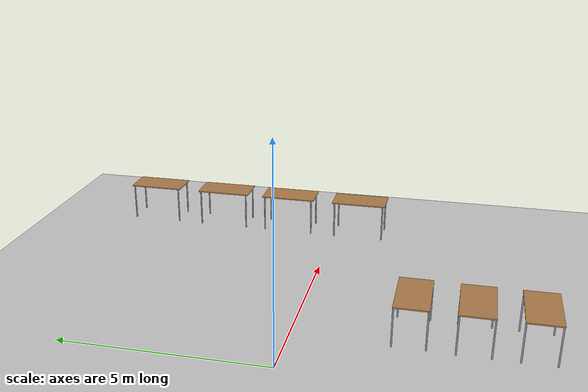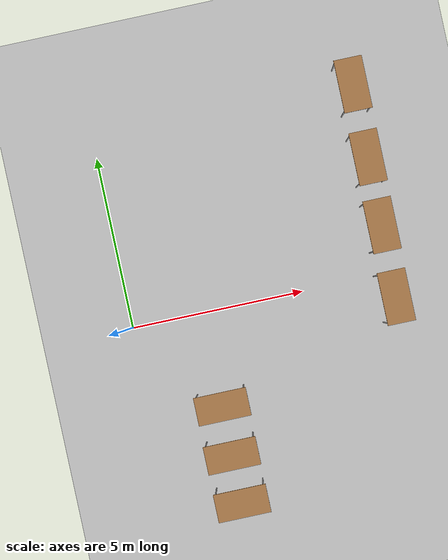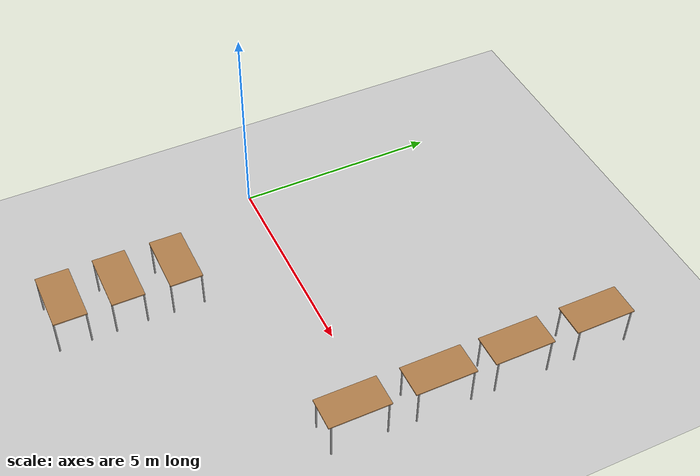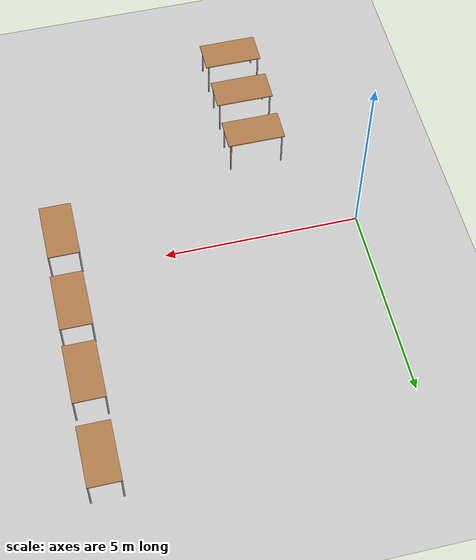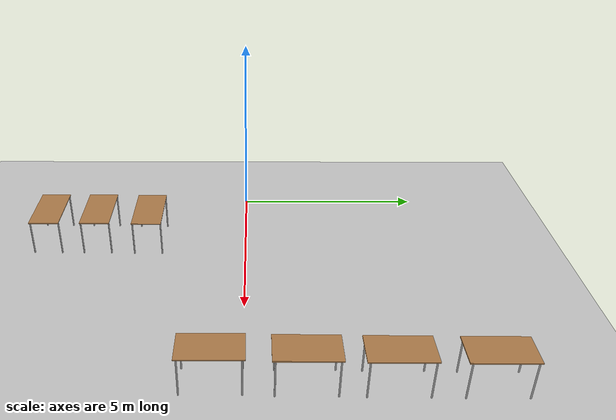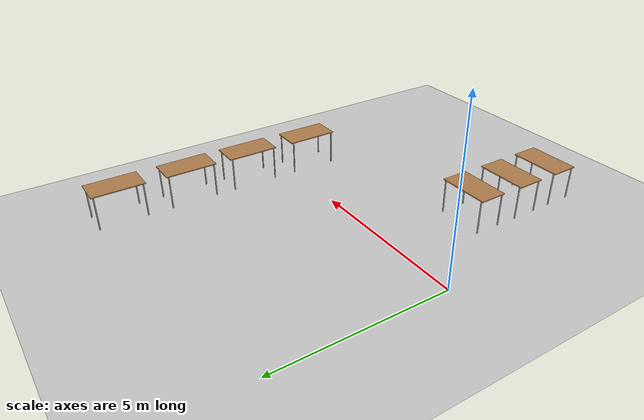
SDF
<sdf version="1.7">
 <world name="default">
  <model name="ground_plane">
   <static>1</static>
   <link name="link">
    <collision name="collision">
     <geometry><plane><normal>0 0 1</normal><size>100 100</size></plane></geometry>
     <surface><friction><ode><mu>100</mu><mu2>50</mu2></ode></friction></surface>
    </collision>
    <visual name="visual">
     <cast_shadows>0</cast_shadows>
     <geometry><plane><normal>0 0 1</normal><size>100 100</size></plane></geometry>
     <material>
      <script><uri>file://media/materials/scripts/gazebo.material</uri><name>Gazebo/Grey</name></script>
     </material>
    </visual>
   </link>
  </model>
  <model name="table">
   <static>1</static>
   <link name="link">
    <collision name="surface">
     <pose>0 0 1 0 -0 0</pose>
     <geometry><box><size>1.5 0.8 0.03</size></box></geometry>
     <surface><friction><ode><mu>0.6</mu><mu2>0.6</mu2></ode></friction></surface>
    </collision>
    <visual name="visual1">
     <pose>0 0 1 0 -0 0</pose>
     <geometry><box><size>1.5 0.8 0.03</size></box></geometry>
     <material>
      <script><uri>file://media/materials/scripts/gazebo.material</uri><name>Gazebo/Wood</name></script>
     </material>
    </visual>
    <collision name="front_left_leg">
     <pose>0.68 0.38 0.5 0 -0 0</pose>
     <geometry><cylinder><radius>0.02</radius><length>1</length></cylinder></geometry>
    </collision>
    <visual name="front_left_leg">
     <pose>0.68 0.38 0.5 0 -0 0</pose>
     <geometry><cylinder><radius>0.02</radius><length>1</length></cylinder></geometry>
     <material>
      <script><uri>file://media/materials/scripts/gazebo.material</uri><name>Gazebo/Grey</name></script>
     </material>
    </visual>
    <collision name="front_right_leg">
     <pose>0.68 -0.38 0.5 0 -0 0</pose>
     <geometry><cylinder><radius>0.02</radius><length>1</length></cylinder></geometry>
    </collision>
    <visual name="front_right_leg">
     <pose>0.68 -0.38 0.5 0 -0 0</pose>
     <geometry><cylinder><radius>0.02</radius><length>1</length></cylinder></geometry>
     <material>
      <script><uri>file://media/materials/scripts/gazebo.material</uri><name>Gazebo/Grey</name></script>
     </material>
    </visual>
    <collision name="back_right_leg">
     <pose>-0.68 -0.38 0.5 0 -0 0</pose>
     <geometry><cylinder><radius>0.02</radius><length>1</length></cylinder></geometry>
    </collision>
    <visual name="back_right_leg">
     <pose>-0.68 -0.38 0.5 0 -0 0</pose>
     <geometry><cylinder><radius>0.02</radius><length>1</length></cylinder></geometry>
     <material>
      <script><uri>file://media/materials/scripts/gazebo.material</uri><name>Gazebo/Grey</name></script>
     </material>
    </visual>
    <collision name="back_left_leg">
     <pose>-0.68 0.38 0.5 0 -0 0</pose>
     <geometry><cylinder><radius>0.02</radius><length>1</length></cylinder></geometry>
    </collision>
    <visual name="back_left_leg">
     <pose>-0.68 0.38 0.5 0 -0 0</pose>
     <geometry><cylinder><radius>0.02</radius><length>1</length></cylinder></geometry>
     <material>
      <script><uri>file://media/materials/scripts/gazebo.material</uri><name>Gazebo/Grey</name></script>
     </material>
    </visual>
   </link>
   <pose>2.0502 -5.43065 0 0 -0 0</pose>
  </model>
  <model name="table_0">
   <static>1</static>
   <link name="link">
    <collision name="surface">
     <pose>0 0 1 0 -0 0</pose>
     <geometry><box><size>1.5 0.8 0.03</size></box></geometry>
     <surface><friction><ode><mu>0.6</mu><mu2>0.6</mu2></ode></friction></surface>
    </collision>
    <visual name="visual1">
     <pose>0 0 1 0 -0 0</pose>
     <geometry><box><size>1.5 0.8 0.03</size></box></geometry>
     <material>
      <script><uri>file://media/materials/scripts/gazebo.material</uri><name>Gazebo/Wood</name></script>
     </material>
    </visual>
    <collision name="front_left_leg">
     <pose>0.68 0.38 0.5 0 -0 0</pose>
     <geometry><cylinder><radius>0.02</radius><length>1</length></cylinder></geometry>
    </collision>
    <visual name="front_left_leg">
     <pose>0.68 0.38 0.5 0 -0 0</pose>
     <geometry><cylinder><radius>0.02</radius><length>1</length></cylinder></geometry>
     <material>
      <script><uri>file://media/materials/scripts/gazebo.material</uri><name>Gazebo/Grey</name></script>
     </material>
    </visual>
    <collision name="front_right_leg">
     <pose>0.68 -0.38 0.5 0 -0 0</pose>
     <geometry><cylinder><radius>0.02</radius><length>1</length></cylinder></geometry>
    </collision>
    <visual name="front_right_leg">
     <pose>0.68 -0.38 0.5 0 -0 0</pose>
     <geometry><cylinder><radius>0.02</radius><length>1</length></cylinder></geometry>
     <material>
      <script><uri>file://media/materials/scripts/gazebo.material</uri><name>Gazebo/Grey</name></script>
     </material>
    </visual>
    <collision name="back_right_leg">
     <pose>-0.68 -0.38 0.5 0 -0 0</pose>
     <geometry><cylinder><radius>0.02</radius><length>1</length></cylinder></geometry>
    </collision>
    <visual name="back_right_leg">
     <pose>-0.68 -0.38 0.5 0 -0 0</pose>
     <geometry><cylinder><radius>0.02</radius><length>1</length></cylinder></geometry>
     <material>
      <script><uri>file://media/materials/scripts/gazebo.material</uri><name>Gazebo/Grey</name></script>
     </material>
    </visual>
    <collision name="back_left_leg">
     <pose>-0.68 0.38 0.5 0 -0 0</pose>
     <geometry><cylinder><radius>0.02</radius><length>1</length></cylinder></geometry>
    </collision>
    <visual name="back_left_leg">
     <pose>-0.68 0.38 0.5 0 -0 0</pose>
     <geometry><cylinder><radius>0.02</radius><length>1</length></cylinder></geometry>
     <material>
      <script><uri>file://media/materials/scripts/gazebo.material</uri><name>Gazebo/Grey</name></script>
     </material>
    </visual>
   </link>
   <pose>2.05361 -4.06765 0 0 -0 0</pose>
  </model>
  <model name="table_1">
   <static>1</static>
   <link name="link">
    <collision name="surface">
     <pose>0 0 1 0 -0 0</pose>
     <geometry><box><size>1.5 0.8 0.03</size></box></geometry>
     <surface><friction><ode><mu>0.6</mu><mu2>0.6</mu2></ode></friction></surface>
    </collision>
    <visual name="visual1">
     <pose>0 0 1 0 -0 0</pose>
     <geometry><box><size>1.5 0.8 0.03</size></box></geometry>
     <material>
      <script><uri>file://media/materials/scripts/gazebo.material</uri><name>Gazebo/Wood</name></script>
     </material>
    </visual>
    <collision name="front_left_leg">
     <pose>0.68 0.38 0.5 0 -0 0</pose>
     <geometry><cylinder><radius>0.02</radius><length>1</length></cylinder></geometry>
    </collision>
    <visual name="front_left_leg">
     <pose>0.68 0.38 0.5 0 -0 0</pose>
     <geometry><cylinder><radius>0.02</radius><length>1</length></cylinder></geometry>
     <material>
      <script><uri>file://media/materials/scripts/gazebo.material</uri><name>Gazebo/Grey</name></script>
     </material>
    </visual>
    <collision name="front_right_leg">
     <pose>0.68 -0.38 0.5 0 -0 0</pose>
     <geometry><cylinder><radius>0.02</radius><length>1</length></cylinder></geometry>
    </collision>
    <visual name="front_right_leg">
     <pose>0.68 -0.38 0.5 0 -0 0</pose>
     <geometry><cylinder><radius>0.02</radius><length>1</length></cylinder></geometry>
     <material>
      <script><uri>file://media/materials/scripts/gazebo.material</uri><name>Gazebo/Grey</name></script>
     </material>
    </visual>
    <collision name="back_right_leg">
     <pose>-0.68 -0.38 0.5 0 -0 0</pose>
     <geometry><cylinder><radius>0.02</radius><length>1</length></cylinder></geometry>
    </collision>
    <visual name="back_right_leg">
     <pose>-0.68 -0.38 0.5 0 -0 0</pose>
     <geometry><cylinder><radius>0.02</radius><length>1</length></cylinder></geometry>
     <material>
      <script><uri>file://media/materials/scripts/gazebo.material</uri><name>Gazebo/Grey</name></script>
     </material>
    </visual>
    <collision name="back_left_leg">
     <pose>-0.68 0.38 0.5 0 -0 0</pose>
     <geometry><cylinder><radius>0.02</radius><length>1</length></cylinder></geometry>
    </collision>
    <visual name="back_left_leg">
     <pose>-0.68 0.38 0.5 0 -0 0</pose>
     <geometry><cylinder><radius>0.02</radius><length>1</length></cylinder></geometry>
     <material>
      <script><uri>file://media/materials/scripts/gazebo.material</uri><name>Gazebo/Grey</name></script>
     </material>
    </visual>
   </link>
   <pose>2.08013 -2.66992 0 0 -0 0</pose>
  </model>
  <model name="table_2">
   <static>1</static>
   <link name="link">
    <collision name="surface">
     <pose>0 0 1 0 -0 0</pose>
     <geometry><box><size>1.5 0.8 0.03</size></box></geometry>
     <surface><friction><ode><mu>0.6</mu><mu2>0.6</mu2></ode></friction></surface>
    </collision>
    <visual name="visual1">
     <pose>0 0 1 0 -0 0</pose>
     <geometry><box><size>1.5 0.8 0.03</size></box></geometry>
     <material>
      <script><uri>file://media/materials/scripts/gazebo.material</uri><name>Gazebo/Wood</name></script>
     </material>
    </visual>
    <collision name="front_left_leg">
     <pose>0.68 0.38 0.5 0 -0 0</pose>
     <geometry><cylinder><radius>0.02</radius><length>1</length></cylinder></geometry>
    </collision>
    <visual name="front_left_leg">
     <pose>0.68 0.38 0.5 0 -0 0</pose>
     <geometry><cylinder><radius>0.02</radius><length>1</length></cylinder></geometry>
     <material>
      <script><uri>file://media/materials/scripts/gazebo.material</uri><name>Gazebo/Grey</name></script>
     </material>
    </visual>
    <collision name="front_right_leg">
     <pose>0.68 -0.38 0.5 0 -0 0</pose>
     <geometry><cylinder><radius>0.02</radius><length>1</length></cylinder></geometry>
    </collision>
    <visual name="front_right_leg">
     <pose>0.68 -0.38 0.5 0 -0 0</pose>
     <geometry><cylinder><radius>0.02</radius><length>1</length></cylinder></geometry>
     <material>
      <script><uri>file://media/materials/scripts/gazebo.material</uri><name>Gazebo/Grey</name></script>
     </material>
    </visual>
    <collision name="back_right_leg">
     <pose>-0.68 -0.38 0.5 0 -0 0</pose>
     <geometry><cylinder><radius>0.02</radius><length>1</length></cylinder></geometry>
    </collision>
    <visual name="back_right_leg">
     <pose>-0.68 -0.38 0.5 0 -0 0</pose>
     <geometry><cylinder><radius>0.02</radius><length>1</length></cylinder></geometry>
     <material>
      <script><uri>file://media/materials/scripts/gazebo.material</uri><name>Gazebo/Grey</name></script>
     </material>
    </visual>
    <collision name="back_left_leg">
     <pose>-0.68 0.38 0.5 0 -0 0</pose>
     <geometry><cylinder><radius>0.02</radius><length>1</length></cylinder></geometry>
    </collision>
    <visual name="back_left_leg">
     <pose>-0.68 0.38 0.5 0 -0 0</pose>
     <geometry><cylinder><radius>0.02</radius><length>1</length></cylinder></geometry>
     <material>
      <script><uri>file://media/materials/scripts/gazebo.material</uri><name>Gazebo/Grey</name></script>
     </material>
    </visual>
   </link>
   <pose>7.56289 5.37268 0 0 0 -1.57243</pose>
  </model>
  <model name="table_2_clone">
   <static>1</static>
   <link name="link">
    <collision name="surface">
     <pose>0 0 1 0 -0 0</pose>
     <geometry><box><size>1.5 0.8 0.03</size></box></geometry>
     <surface><friction><ode><mu>0.6</mu><mu2>0.6</mu2></ode></friction></surface>
    </collision>
    <visual name="visual1">
     <pose>0 0 1 0 -0 0</pose>
     <geometry><box><size>1.5 0.8 0.03</size></box></geometry>
     <material>
      <script><uri>file://media/materials/scripts/gazebo.material</uri><name>Gazebo/Wood</name></script>
     </material>
    </visual>
    <collision name="front_left_leg">
     <pose>0.68 0.38 0.5 0 -0 0</pose>
     <geometry><cylinder><radius>0.02</radius><length>1</length></cylinder></geometry>
    </collision>
    <visual name="front_left_leg">
     <pose>0.68 0.38 0.5 0 -0 0</pose>
     <geometry><cylinder><radius>0.02</radius><length>1</length></cylinder></geometry>
     <material>
      <script><uri>file://media/materials/scripts/gazebo.material</uri><name>Gazebo/Grey</name></script>
     </material>
    </visual>
    <collision name="front_right_leg">
     <pose>0.68 -0.38 0.5 0 -0 0</pose>
     <geometry><cylinder><radius>0.02</radius><length>1</length></cylinder></geometry>
    </collision>
    <visual name="front_right_leg">
     <pose>0.68 -0.38 0.5 0 -0 0</pose>
     <geometry><cylinder><radius>0.02</radius><length>1</length></cylinder></geometry>
     <material>
      <script><uri>file://media/materials/scripts/gazebo.material</uri><name>Gazebo/Grey</name></script>
     </material>
    </visual>
    <collision name="back_right_leg">
     <pose>-0.68 -0.38 0.5 0 -0 0</pose>
     <geometry><cylinder><radius>0.02</radius><length>1</length></cylinder></geometry>
    </collision>
    <visual name="back_right_leg">
     <pose>-0.68 -0.38 0.5 0 -0 0</pose>
     <geometry><cylinder><radius>0.02</radius><length>1</length></cylinder></geometry>
     <material>
      <script><uri>file://media/materials/scripts/gazebo.material</uri><name>Gazebo/Grey</name></script>
     </material>
    </visual>
    <collision name="back_left_leg">
     <pose>-0.68 0.38 0.5 0 -0 0</pose>
     <geometry><cylinder><radius>0.02</radius><length>1</length></cylinder></geometry>
    </collision>
    <visual name="back_left_leg">
     <pose>-0.68 0.38 0.5 0 -0 0</pose>
     <geometry><cylinder><radius>0.02</radius><length>1</length></cylinder></geometry>
     <material>
      <script><uri>file://media/materials/scripts/gazebo.material</uri><name>Gazebo/Grey</name></script>
     </material>
    </visual>
   </link>
   <pose>7.54441 3.29428 0 0 0 -1.57243</pose>
  </model>
  <model name="table_2_clone_0">
   <static>1</static>
   <link name="link">
    <collision name="surface">
     <pose>0 0 1 0 -0 0</pose>
     <geometry><box><size>1.5 0.8 0.03</size></box></geometry>
     <surface><friction><ode><mu>0.6</mu><mu2>0.6</mu2></ode></friction></surface>
    </collision>
    <visual name="visual1">
     <pose>0 0 1 0 -0 0</pose>
     <geometry><box><size>1.5 0.8 0.03</size></box></geometry>
     <material>
      <script><uri>file://media/materials/scripts/gazebo.material</uri><name>Gazebo/Wood</name></script>
     </material>
    </visual>
    <collision name="front_left_leg">
     <pose>0.68 0.38 0.5 0 -0 0</pose>
     <geometry><cylinder><radius>0.02</radius><length>1</length></cylinder></geometry>
    </collision>
    <visual name="front_left_leg">
     <pose>0.68 0.38 0.5 0 -0 0</pose>
     <geometry><cylinder><radius>0.02</radius><length>1</length></cylinder></geometry>
     <material>
      <script><uri>file://media/materials/scripts/gazebo.material</uri><name>Gazebo/Grey</name></script>
     </material>
    </visual>
    <collision name="front_right_leg">
     <pose>0.68 -0.38 0.5 0 -0 0</pose>
     <geometry><cylinder><radius>0.02</radius><length>1</length></cylinder></geometry>
    </collision>
    <visual name="front_right_leg">
     <pose>0.68 -0.38 0.5 0 -0 0</pose>
     <geometry><cylinder><radius>0.02</radius><length>1</length></cylinder></geometry>
     <material>
      <script><uri>file://media/materials/scripts/gazebo.material</uri><name>Gazebo/Grey</name></script>
     </material>
    </visual>
    <collision name="back_right_leg">
     <pose>-0.68 -0.38 0.5 0 -0 0</pose>
     <geometry><cylinder><radius>0.02</radius><length>1</length></cylinder></geometry>
    </collision>
    <visual name="back_right_leg">
     <pose>-0.68 -0.38 0.5 0 -0 0</pose>
     <geometry><cylinder><radius>0.02</radius><length>1</length></cylinder></geometry>
     <material>
      <script><uri>file://media/materials/scripts/gazebo.material</uri><name>Gazebo/Grey</name></script>
     </material>
    </visual>
    <collision name="back_left_leg">
     <pose>-0.68 0.38 0.5 0 -0 0</pose>
     <geometry><cylinder><radius>0.02</radius><length>1</length></cylinder></geometry>
    </collision>
    <visual name="back_left_leg">
     <pose>-0.68 0.38 0.5 0 -0 0</pose>
     <geometry><cylinder><radius>0.02</radius><length>1</length></cylinder></geometry>
     <material>
      <script><uri>file://media/materials/scripts/gazebo.material</uri><name>Gazebo/Grey</name></script>
     </material>
    </visual>
   </link>
   <pose>7.5209 1.35087 0 0 0 -1.57243</pose>
  </model>
  <model name="table_2_clone_1">
   <static>1</static>
   <link name="link">
    <collision name="surface">
     <pose>0 0 1 0 -0 0</pose>
     <geometry><box><size>1.5 0.8 0.03</size></box></geometry>
     <surface><friction><ode><mu>0.6</mu><mu2>0.6</mu2></ode></friction></surface>
    </collision>
    <visual name="visual1">
     <pose>0 0 1 0 -0 0</pose>
     <geometry><box><size>1.5 0.8 0.03</size></box></geometry>
     <material>
      <script><uri>file://media/materials/scripts/gazebo.material</uri><name>Gazebo/Wood</name></script>
     </material>
    </visual>
    <collision name="front_left_leg">
     <pose>0.68 0.38 0.5 0 -0 0</pose>
     <geometry><cylinder><radius>0.02</radius><length>1</length></cylinder></geometry>
    </collision>
    <visual name="front_left_leg">
     <pose>0.68 0.38 0.5 0 -0 0</pose>
     <geometry><cylinder><radius>0.02</radius><length>1</length></cylinder></geometry>
     <material>
      <script><uri>file://media/materials/scripts/gazebo.material</uri><name>Gazebo/Grey</name></script>
     </material>
    </visual>
    <collision name="front_right_leg">
     <pose>0.68 -0.38 0.5 0 -0 0</pose>
     <geometry><cylinder><radius>0.02</radius><length>1</length></cylinder></geometry>
    </collision>
    <visual name="front_right_leg">
     <pose>0.68 -0.38 0.5 0 -0 0</pose>
     <geometry><cylinder><radius>0.02</radius><length>1</length></cylinder></geometry>
     <material>
      <script><uri>file://media/materials/scripts/gazebo.material</uri><name>Gazebo/Grey</name></script>
     </material>
    </visual>
    <collision name="back_right_leg">
     <pose>-0.68 -0.38 0.5 0 -0 0</pose>
     <geometry><cylinder><radius>0.02</radius><length>1</length></cylinder></geometry>
    </collision>
    <visual name="back_right_leg">
     <pose>-0.68 -0.38 0.5 0 -0 0</pose>
     <geometry><cylinder><radius>0.02</radius><length>1</length></cylinder></geometry>
     <material>
      <script><uri>file://media/materials/scripts/gazebo.material</uri><name>Gazebo/Grey</name></script>
     </material>
    </visual>
    <collision name="back_left_leg">
     <pose>-0.68 0.38 0.5 0 -0 0</pose>
     <geometry><cylinder><radius>0.02</radius><length>1</length></cylinder></geometry>
    </collision>
    <visual name="back_left_leg">
     <pose>-0.68 0.38 0.5 0 -0 0</pose>
     <geometry><cylinder><radius>0.02</radius><length>1</length></cylinder></geometry>
     <material>
      <script><uri>file://media/materials/scripts/gazebo.material</uri><name>Gazebo/Grey</name></script>
     </material>
    </visual>
   </link>
   <pose>7.48983 -0.693213 0 0 0 -1.57243</pose>
  </model>
 </world>
</sdf>
